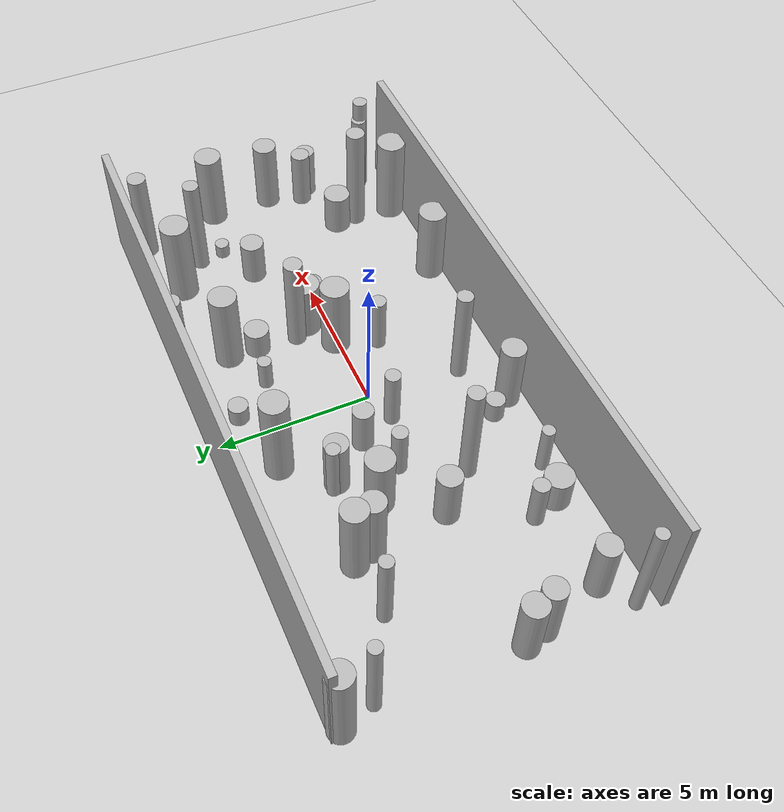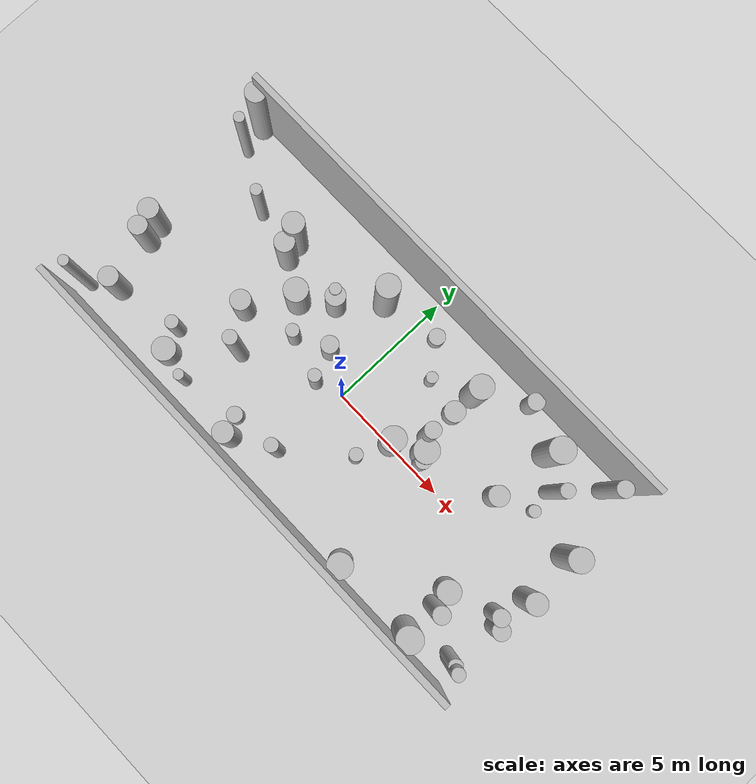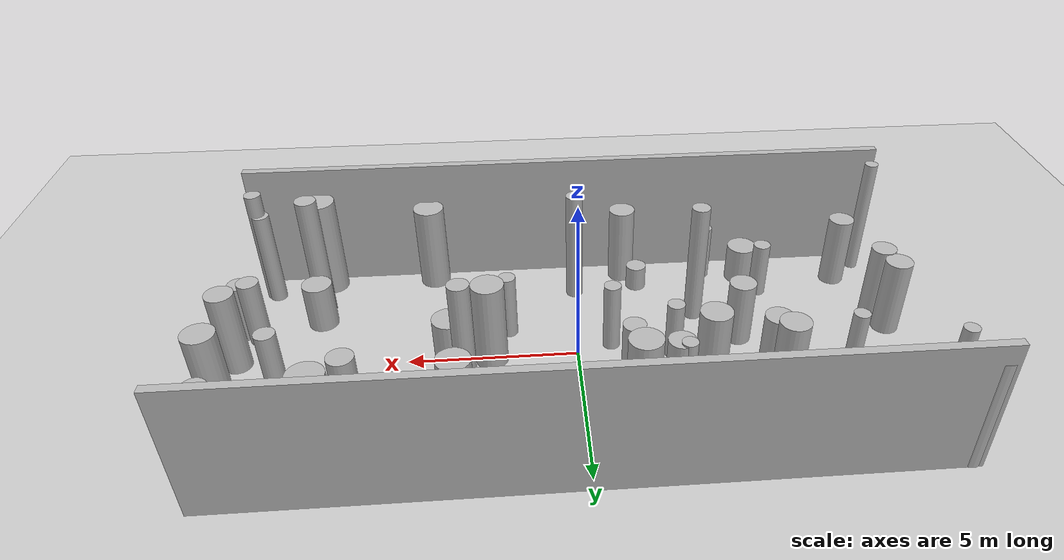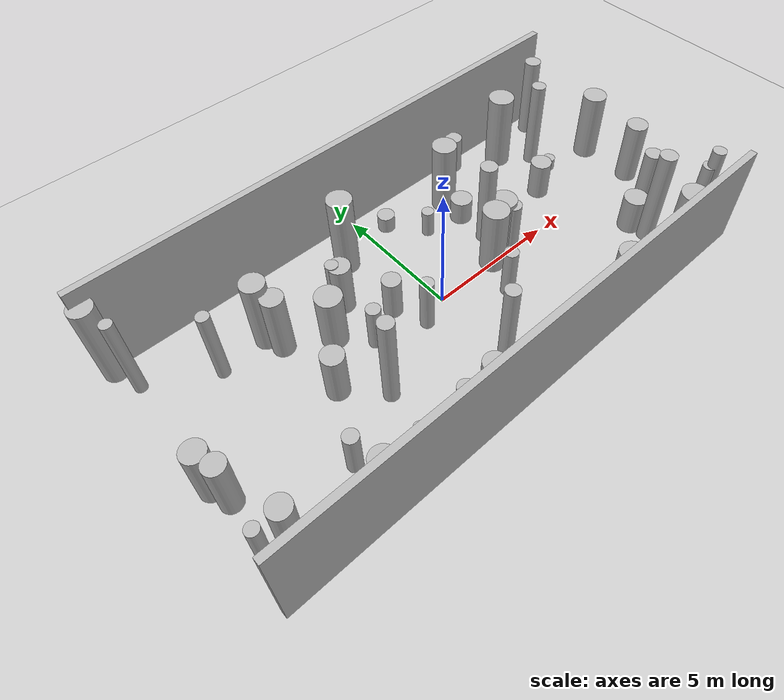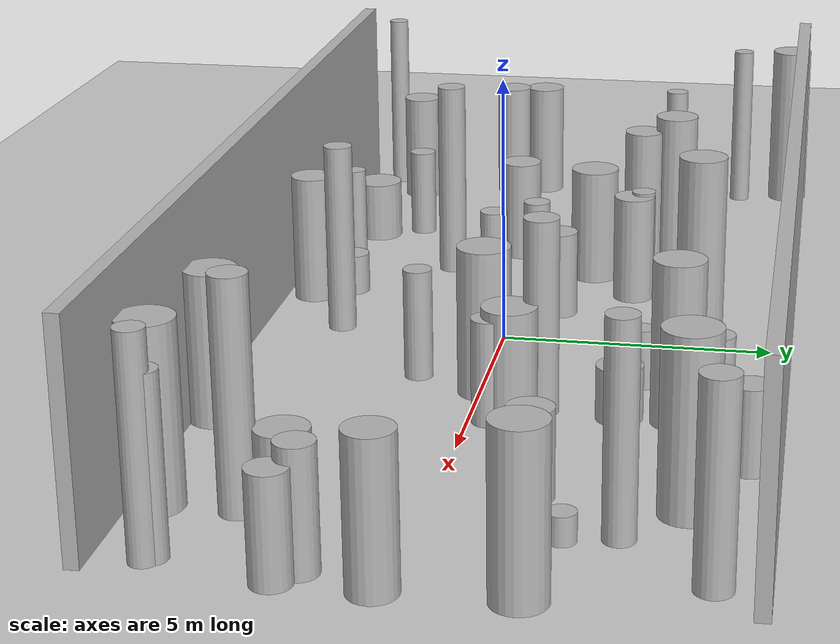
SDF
<?xml version="1.0"?>
<sdf version="1.4">
  <world name="default">
    <gui>
      <camera name="user_camera">
        <pose>-20 -30 40 0 0.66 0.83</pose>
      </camera>
    </gui>
    <include>
      <uri>model://ground_plane</uri>
    </include>
    <include>
      <uri>model://sun</uri>
    </include>
    <scene>
      <shadows>0</shadows>
    </scene>
    <model name="forest">
      <static>true</static>
      <link name="cylinder0">
        <pose>-1.0301177082719377 -0.35983007779228604 1.0854777813923082 0 0 0 </pose>
        <visual name="visual">
          <geometry>
            <cylinder>
              <radius>0.25306139632455926</radius>
              <length>2.1709555627846164</length>
            </cylinder>
          </geometry>
        </visual>
        <collision name="collision">
          <geometry>
            <cylinder>
              <radius>0.25306139632455926</radius>
              <length>2.1709555627846164</length>
            </cylinder>
          </geometry>
          <max_contacts>0</max_contacts>
        </collision>
      </link>
      <link name="cylinder1">
        <pose>-1.4057930810582207 3.5692456613395436 1.6581017096428807 0 0 0 </pose>
        <visual name="visual">
          <geometry>
            <cylinder>
              <radius>0.4557007820598614</radius>
              <length>3.3162034192857615</length>
            </cylinder>
          </geometry>
        </visual>
        <collision name="collision">
          <geometry>
            <cylinder>
              <radius>0.4557007820598614</radius>
              <length>3.3162034192857615</length>
            </cylinder>
          </geometry>
          <max_contacts>0</max_contacts>
        </collision>
      </link>
      <link name="cylinder2">
        <pose>9.45469379322288 -3.700964951062209 1.5098501211940758 0 0 0 </pose>
        <visual name="visual">
          <geometry>
            <cylinder>
              <radius>0.25859602107051727</radius>
              <length>3.0197002423881516</length>
            </cylinder>
          </geometry>
        </visual>
        <collision name="collision">
          <geometry>
            <cylinder>
              <radius>0.25859602107051727</radius>
              <length>3.0197002423881516</length>
            </cylinder>
          </geometry>
          <max_contacts>0</max_contacts>
        </collision>
      </link>
      <link name="cylinder3">
        <pose>7.98379791241549 2.172332037739241 0.24824209040521372 0 0 0 </pose>
        <visual name="visual">
          <geometry>
            <cylinder>
              <radius>0.2395807017288249</radius>
              <length>0.49648418081042744</length>
            </cylinder>
          </geometry>
        </visual>
        <collision name="collision">
          <geometry>
            <cylinder>
              <radius>0.2395807017288249</radius>
              <length>0.49648418081042744</length>
            </cylinder>
          </geometry>
          <max_contacts>0</max_contacts>
        </collision>
      </link>
      <link name="cylinder4">
        <pose>-2.8183339231847127 0.20994360579979254 0.9102416969493585 0 0 0 </pose>
        <visual name="visual">
          <geometry>
            <cylinder>
              <radius>0.25798971732153614</radius>
              <length>1.820483393898717</length>
            </cylinder>
          </geometry>
        </visual>
        <collision name="collision">
          <geometry>
            <cylinder>
              <radius>0.25798971732153614</radius>
              <length>1.820483393898717</length>
            </cylinder>
          </geometry>
          <max_contacts>0</max_contacts>
        </collision>
      </link>
      <link name="cylinder5">
        <pose>4.41498378678345 -4.254336631859525 1.3691623202220524 0 0 0 </pose>
        <visual name="visual">
          <geometry>
            <cylinder>
              <radius>0.47167478547522673</radius>
              <length>2.738324640444105</length>
            </cylinder>
          </geometry>
        </visual>
        <collision name="collision">
          <geometry>
            <cylinder>
              <radius>0.47167478547522673</radius>
              <length>2.738324640444105</length>
            </cylinder>
          </geometry>
          <max_contacts>0</max_contacts>
        </collision>
      </link>
      <link name="cylinder6">
        <pose>-9.356803147631688 -1.2666465442239705 1.2141438456737954 0 0 0 </pose>
        <visual name="visual">
          <geometry>
            <cylinder>
              <radius>0.37046246489823964</radius>
              <length>2.428287691347591</length>
            </cylinder>
          </geometry>
        </visual>
        <collision name="collision">
          <geometry>
            <cylinder>
              <radius>0.37046246489823964</radius>
              <length>2.428287691347591</length>
            </cylinder>
          </geometry>
          <max_contacts>0</max_contacts>
        </collision>
      </link>
      <link name="cylinder7">
        <pose>6.584523013684574 1.4855843340299204 0.7706817661126549 0 0 0 </pose>
        <visual name="visual">
          <geometry>
            <cylinder>
              <radius>0.3960398615192342</radius>
              <length>1.5413635322253099</length>
            </cylinder>
          </geometry>
        </visual>
        <collision name="collision">
          <geometry>
            <cylinder>
              <radius>0.3960398615192342</radius>
              <length>1.5413635322253099</length>
            </cylinder>
          </geometry>
          <max_contacts>0</max_contacts>
        </collision>
      </link>
      <link name="cylinder8">
        <pose>-7.20698206606373 2.6252708814560037 1.5176462124301255 0 0 0 </pose>
        <visual name="visual">
          <geometry>
            <cylinder>
              <radius>0.22334997959686098</radius>
              <length>3.035292424860251</length>
            </cylinder>
          </geometry>
        </visual>
        <collision name="collision">
          <geometry>
            <cylinder>
              <radius>0.22334997959686098</radius>
              <length>3.035292424860251</length>
            </cylinder>
          </geometry>
          <max_contacts>0</max_contacts>
        </collision>
      </link>
      <link name="cylinder9">
        <pose>-9.450710835631062 3.9289946607988426 1.715501511258525 0 0 0 </pose>
        <visual name="visual">
          <geometry>
            <cylinder>
              <radius>0.21002016579064794</radius>
              <length>3.43100302251705</length>
            </cylinder>
          </geometry>
        </visual>
        <collision name="collision">
          <geometry>
            <cylinder>
              <radius>0.21002016579064794</radius>
              <length>3.43100302251705</length>
            </cylinder>
          </geometry>
          <max_contacts>0</max_contacts>
        </collision>
      </link>
      <link name="cylinder10">
        <pose>-2.808255917658835 2.3370781648043337 1.0693602171880967 0 0 0 </pose>
        <visual name="visual">
          <geometry>
            <cylinder>
              <radius>0.23156748395044202</radius>
              <length>2.1387204343761934</length>
            </cylinder>
          </geometry>
        </visual>
        <collision name="collision">
          <geometry>
            <cylinder>
              <radius>0.23156748395044202</radius>
              <length>2.1387204343761934</length>
            </cylinder>
          </geometry>
          <max_contacts>0</max_contacts>
        </collision>
      </link>
      <link name="cylinder11">
        <pose>-2.6306390841247644 2.1709371766049648 1.0442551333129146 0 0 0 </pose>
        <visual name="visual">
          <geometry>
            <cylinder>
              <radius>0.3920221159887988</radius>
              <length>2.0885102666258293</length>
            </cylinder>
          </geometry>
        </visual>
        <collision name="collision">
          <geometry>
            <cylinder>
              <radius>0.3920221159887988</radius>
              <length>2.0885102666258293</length>
            </cylinder>
          </geometry>
          <max_contacts>0</max_contacts>
        </collision>
      </link>
      <link name="cylinder12">
        <pose>5.105690594820015 4.835596534734176 0.7611342861935041 0 0 0 </pose>
        <visual name="visual">
          <geometry>
            <cylinder>
              <radius>0.33055577144128057</radius>
              <length>1.5222685723870082</length>
            </cylinder>
          </geometry>
        </visual>
        <collision name="collision">
          <geometry>
            <cylinder>
              <radius>0.33055577144128057</radius>
              <length>1.5222685723870082</length>
            </cylinder>
          </geometry>
          <max_contacts>0</max_contacts>
        </collision>
      </link>
      <link name="cylinder13">
        <pose>2.5545583391392235 0.06921111825929316 1.3560166258051618 0 0 0 </pose>
        <visual name="visual">
          <geometry>
            <cylinder>
              <radius>0.4774235928512021</radius>
              <length>2.7120332516103236</length>
            </cylinder>
          </geometry>
        </visual>
        <collision name="collision">
          <geometry>
            <cylinder>
              <radius>0.4774235928512021</radius>
              <length>2.7120332516103236</length>
            </cylinder>
          </geometry>
          <max_contacts>0</max_contacts>
        </collision>
      </link>
      <link name="cylinder14">
        <pose>-5.41961300604849 2.7653528784595194 1.4892827207567176 0 0 0 </pose>
        <visual name="visual">
          <geometry>
            <cylinder>
              <radius>0.4261585292087446</radius>
              <length>2.9785654415134353</length>
            </cylinder>
          </geometry>
        </visual>
        <collision name="collision">
          <geometry>
            <cylinder>
              <radius>0.4261585292087446</radius>
              <length>2.9785654415134353</length>
            </cylinder>
          </geometry>
          <max_contacts>0</max_contacts>
        </collision>
      </link>
      <link name="cylinder15">
        <pose>3.645912225240197 0.6861011706055109 1.025085191809132 0 0 0 </pose>
        <visual name="visual">
          <geometry>
            <cylinder>
              <radius>0.4849605764676407</radius>
              <length>2.050170383618264</length>
            </cylinder>
          </geometry>
        </visual>
        <collision name="collision">
          <geometry>
            <cylinder>
              <radius>0.4849605764676407</radius>
              <length>2.050170383618264</length>
            </cylinder>
          </geometry>
          <max_contacts>0</max_contacts>
        </collision>
      </link>
      <link name="cylinder16">
        <pose>6.8112615467732205 3.97600326297027 1.5469773722376452 0 0 0 </pose>
        <visual name="visual">
          <geometry>
            <cylinder>
              <radius>0.4889455749192782</radius>
              <length>3.0939547444752904</length>
            </cylinder>
          </geometry>
        </visual>
        <collision name="collision">
          <geometry>
            <cylinder>
              <radius>0.4889455749192782</radius>
              <length>3.0939547444752904</length>
            </cylinder>
          </geometry>
          <max_contacts>0</max_contacts>
        </collision>
      </link>
      <link name="cylinder17">
        <pose>-6.06583451708447 -2.751946404324869 0.8910299115256004 0 0 0 </pose>
        <visual name="visual">
          <geometry>
            <cylinder>
              <radius>0.262986723006799</radius>
              <length>1.7820598230512008</length>
            </cylinder>
          </geometry>
        </visual>
        <collision name="collision">
          <geometry>
            <cylinder>
              <radius>0.262986723006799</radius>
              <length>1.7820598230512008</length>
            </cylinder>
          </geometry>
          <max_contacts>0</max_contacts>
        </collision>
      </link>
      <link name="cylinder18">
        <pose>9.932474322972098 -1.771116225794882 0.9198522296893321 0 0 0 </pose>
        <visual name="visual">
          <geometry>
            <cylinder>
              <radius>0.3383912498797816</radius>
              <length>1.8397044593786642</length>
            </cylinder>
          </geometry>
        </visual>
        <collision name="collision">
          <geometry>
            <cylinder>
              <radius>0.3383912498797816</radius>
              <length>1.8397044593786642</length>
            </cylinder>
          </geometry>
          <max_contacts>0</max_contacts>
        </collision>
      </link>
      <link name="cylinder19">
        <pose>-9.739532376414626 4.993554119943317 1.7069043245133328 0 0 0 </pose>
        <visual name="visual">
          <geometry>
            <cylinder>
              <radius>0.41273974158868937</radius>
              <length>3.4138086490266657</length>
            </cylinder>
          </geometry>
        </visual>
        <collision name="collision">
          <geometry>
            <cylinder>
              <radius>0.41273974158868937</radius>
              <length>3.4138086490266657</length>
            </cylinder>
          </geometry>
          <max_contacts>0</max_contacts>
        </collision>
      </link>
      <link name="cylinder20">
        <pose>-4.889650928662763 -0.41244816308899246 1.0064940266855156 0 0 0 </pose>
        <visual name="visual">
          <geometry>
            <cylinder>
              <radius>0.39794867056142336</radius>
              <length>2.012988053371031</length>
            </cylinder>
          </geometry>
        </visual>
        <collision name="collision">
          <geometry>
            <cylinder>
              <radius>0.39794867056142336</radius>
              <length>2.012988053371031</length>
            </cylinder>
          </geometry>
          <max_contacts>0</max_contacts>
        </collision>
      </link>
      <link name="cylinder21">
        <pose>-8.727722670795103 -3.2923282695976672 1.1363986280212557 0 0 0 </pose>
        <visual name="visual">
          <geometry>
            <cylinder>
              <radius>0.38655742192874687</radius>
              <length>2.2727972560425114</length>
            </cylinder>
          </geometry>
        </visual>
        <collision name="collision">
          <geometry>
            <cylinder>
              <radius>0.38655742192874687</radius>
              <length>2.2727972560425114</length>
            </cylinder>
          </geometry>
          <max_contacts>0</max_contacts>
        </collision>
      </link>
      <link name="cylinder22">
        <pose>9.91535111218106 1.8278236889752044 1.4117125554089376 0 0 0 </pose>
        <visual name="visual">
          <geometry>
            <cylinder>
              <radius>0.4548998262114673</radius>
              <length>2.823425110817875</length>
            </cylinder>
          </geometry>
        </visual>
        <collision name="collision">
          <geometry>
            <cylinder>
              <radius>0.4548998262114673</radius>
              <length>2.823425110817875</length>
            </cylinder>
          </geometry>
          <max_contacts>0</max_contacts>
        </collision>
      </link>
      <link name="cylinder23">
        <pose>-2.1583639786612157 -3.397853003846522 0.3925081955597124 0 0 0 </pose>
        <visual name="visual">
          <geometry>
            <cylinder>
              <radius>0.315291579282266</radius>
              <length>0.7850163911194248</length>
            </cylinder>
          </geometry>
        </visual>
        <collision name="collision">
          <geometry>
            <cylinder>
              <radius>0.315291579282266</radius>
              <length>0.7850163911194248</length>
            </cylinder>
          </geometry>
          <max_contacts>0</max_contacts>
        </collision>
      </link>
      <link name="cylinder24">
        <pose>3.26316294013173 1.17591690210595 1.7584346925165029 0 0 0 </pose>
        <visual name="visual">
          <geometry>
            <cylinder>
              <radius>0.30866158302238134</radius>
              <length>3.5168693850330057</length>
            </cylinder>
          </geometry>
        </visual>
        <collision name="collision">
          <geometry>
            <cylinder>
              <radius>0.30866158302238134</radius>
              <length>3.5168693850330057</length>
            </cylinder>
          </geometry>
          <max_contacts>0</max_contacts>
        </collision>
      </link>
      <link name="cylinder25">
        <pose>-4.463253952501935 -3.8629159519933163 0.9005606489993493 0 0 0 </pose>
        <visual name="visual">
          <geometry>
            <cylinder>
              <radius>0.20627816904419793</radius>
              <length>1.8011212979986986</length>
            </cylinder>
          </geometry>
        </visual>
        <collision name="collision">
          <geometry>
            <cylinder>
              <radius>0.20627816904419793</radius>
              <length>1.8011212979986986</length>
            </cylinder>
          </geometry>
          <max_contacts>0</max_contacts>
        </collision>
      </link>
      <link name="cylinder26">
        <pose>7.800215817349962 -2.8778765753006463 1.9674121526582145 0 0 0 </pose>
        <visual name="visual">
          <geometry>
            <cylinder>
              <radius>0.3147102186866023</radius>
              <length>3.934824305316429</length>
            </cylinder>
          </geometry>
        </visual>
        <collision name="collision">
          <geometry>
            <cylinder>
              <radius>0.3147102186866023</radius>
              <length>3.934824305316429</length>
            </cylinder>
          </geometry>
          <max_contacts>0</max_contacts>
        </collision>
      </link>
      <link name="cylinder27">
        <pose>-9.652966927956484 -4.004353160728812 1.9102899290482631 0 0 0 </pose>
        <visual name="visual">
          <geometry>
            <cylinder>
              <radius>0.203503052578854</radius>
              <length>3.8205798580965262</length>
            </cylinder>
          </geometry>
        </visual>
        <collision name="collision">
          <geometry>
            <cylinder>
              <radius>0.203503052578854</radius>
              <length>3.8205798580965262</length>
            </cylinder>
          </geometry>
          <max_contacts>0</max_contacts>
        </collision>
      </link>
      <link name="cylinder28">
        <pose>7.82590391966426 3.0223199536546215 1.8155159349111107 0 0 0 </pose>
        <visual name="visual">
          <geometry>
            <cylinder>
              <radius>0.26985829431617103</radius>
              <length>3.6310318698222215</length>
            </cylinder>
          </geometry>
        </visual>
        <collision name="collision">
          <geometry>
            <cylinder>
              <radius>0.26985829431617103</radius>
              <length>3.6310318698222215</length>
            </cylinder>
          </geometry>
          <max_contacts>0</max_contacts>
        </collision>
      </link>
      <link name="cylinder29">
        <pose>-1.5344373689780824 0.8462422504337583 0.8301172715170129 0 0 0 </pose>
        <visual name="visual">
          <geometry>
            <cylinder>
              <radius>0.34185433960869493</radius>
              <length>1.6602345430340257</length>
            </cylinder>
          </geometry>
        </visual>
        <collision name="collision">
          <geometry>
            <cylinder>
              <radius>0.34185433960869493</radius>
              <length>1.6602345430340257</length>
            </cylinder>
          </geometry>
          <max_contacts>0</max_contacts>
        </collision>
      </link>
      <link name="cylinder30">
        <pose>-1.7294340838899007 -4.079018096959379 1.2462282409171244 0 0 0 </pose>
        <visual name="visual">
          <geometry>
            <cylinder>
              <radius>0.40353290600841374</radius>
              <length>2.4924564818342487</length>
            </cylinder>
          </geometry>
        </visual>
        <collision name="collision">
          <geometry>
            <cylinder>
              <radius>0.40353290600841374</radius>
              <length>2.4924564818342487</length>
            </cylinder>
          </geometry>
          <max_contacts>0</max_contacts>
        </collision>
      </link>
      <link name="cylinder31">
        <pose>-3.7344309758835976 1.2617561798987396 1.141562761419605 0 0 0 </pose>
        <visual name="visual">
          <geometry>
            <cylinder>
              <radius>0.4681156015088108</radius>
              <length>2.28312552283921</length>
            </cylinder>
          </geometry>
        </visual>
        <collision name="collision">
          <geometry>
            <cylinder>
              <radius>0.4681156015088108</radius>
              <length>2.28312552283921</length>
            </cylinder>
          </geometry>
          <max_contacts>0</max_contacts>
        </collision>
      </link>
      <link name="cylinder32">
        <pose>-9.570006772161035 -0.5692363392900877 1.2023051602685055 0 0 0 </pose>
        <visual name="visual">
          <geometry>
            <cylinder>
              <radius>0.4024257171419755</radius>
              <length>2.404610320537011</length>
            </cylinder>
          </geometry>
        </visual>
        <collision name="collision">
          <geometry>
            <cylinder>
              <radius>0.4024257171419755</radius>
              <length>2.404610320537011</length>
            </cylinder>
          </geometry>
          <max_contacts>0</max_contacts>
        </collision>
      </link>
      <link name="cylinder33">
        <pose>9.567919760362113 -3.7978478104303717 1.8476623906600889 0 0 0 </pose>
        <visual name="visual">
          <geometry>
            <cylinder>
              <radius>0.246045659449094</radius>
              <length>3.6953247813201777</length>
            </cylinder>
          </geometry>
        </visual>
        <collision name="collision">
          <geometry>
            <cylinder>
              <radius>0.246045659449094</radius>
              <length>3.6953247813201777</length>
            </cylinder>
          </geometry>
          <max_contacts>0</max_contacts>
        </collision>
      </link>
      <link name="cylinder34">
        <pose>-5.206837335818239 2.1096294966196023 1.3439065616392325 0 0 0 </pose>
        <visual name="visual">
          <geometry>
            <cylinder>
              <radius>0.39163877676072384</radius>
              <length>2.687813123278465</length>
            </cylinder>
          </geometry>
        </visual>
        <collision name="collision">
          <geometry>
            <cylinder>
              <radius>0.39163877676072384</radius>
              <length>2.687813123278465</length>
            </cylinder>
          </geometry>
          <max_contacts>0</max_contacts>
        </collision>
      </link>
      <link name="cylinder35">
        <pose>9.968249902629026 -0.2731007413417803 1.283243092689351 0 0 0 </pose>
        <visual name="visual">
          <geometry>
            <cylinder>
              <radius>0.40769575714067907</radius>
              <length>2.566486185378702</length>
            </cylinder>
          </geometry>
        </visual>
        <collision name="collision">
          <geometry>
            <cylinder>
              <radius>0.40769575714067907</radius>
              <length>2.566486185378702</length>
            </cylinder>
          </geometry>
          <max_contacts>0</max_contacts>
        </collision>
      </link>
      <link name="cylinder36">
        <pose>0.8764862299245841 4.0616958983790425 0.3311875797528571 0 0 0 </pose>
        <visual name="visual">
          <geometry>
            <cylinder>
              <radius>0.32599446944310834</radius>
              <length>0.6623751595057142</length>
            </cylinder>
          </geometry>
        </visual>
        <collision name="collision">
          <geometry>
            <cylinder>
              <radius>0.32599446944310834</radius>
              <length>0.6623751595057142</length>
            </cylinder>
          </geometry>
          <max_contacts>0</max_contacts>
        </collision>
      </link>
      <link name="cylinder37">
        <pose>-3.744541583404817 -1.6703859521818143 1.9302957876654387 0 0 0 </pose>
        <visual name="visual">
          <geometry>
            <cylinder>
              <radius>0.2744688856006209</radius>
              <length>3.8605915753308775</length>
            </cylinder>
          </geometry>
        </visual>
        <collision name="collision">
          <geometry>
            <cylinder>
              <radius>0.2744688856006209</radius>
              <length>3.8605915753308775</length>
            </cylinder>
          </geometry>
          <max_contacts>0</max_contacts>
        </collision>
      </link>
      <link name="cylinder38">
        <pose>-0.1282949070652286 -3.1427050074019256 1.7983210366774856 0 0 0 </pose>
        <visual name="visual">
          <geometry>
            <cylinder>
              <radius>0.26150190584507244</radius>
              <length>3.596642073354971</length>
            </cylinder>
          </geometry>
        </visual>
        <collision name="collision">
          <geometry>
            <cylinder>
              <radius>0.26150190584507244</radius>
              <length>3.596642073354971</length>
            </cylinder>
          </geometry>
          <max_contacts>0</max_contacts>
        </collision>
      </link>
      <link name="cylinder39">
        <pose>1.863863044620512 2.7912235600545277 0.5501927141642496 0 0 0 </pose>
        <visual name="visual">
          <geometry>
            <cylinder>
              <radius>0.22808955955886726</radius>
              <length>1.1003854283284993</length>
            </cylinder>
          </geometry>
        </visual>
        <collision name="collision">
          <geometry>
            <cylinder>
              <radius>0.22808955955886726</radius>
              <length>1.1003854283284993</length>
            </cylinder>
          </geometry>
          <max_contacts>0</max_contacts>
        </collision>
      </link>
      <link name="cylinder40">
        <pose>-5.674263728533882 -3.6391528305188467 0.6037984502127571 0 0 0 </pose>
        <visual name="visual">
          <geometry>
            <cylinder>
              <radius>0.4669074032250789</radius>
              <length>1.2075969004255143</length>
            </cylinder>
          </geometry>
        </visual>
        <collision name="collision">
          <geometry>
            <cylinder>
              <radius>0.4669074032250789</radius>
              <length>1.2075969004255143</length>
            </cylinder>
          </geometry>
          <max_contacts>0</max_contacts>
        </collision>
      </link>
      <link name="cylinder41">
        <pose>3.342499466368844 2.5369544848610577 0.4905101318356744 0 0 0 </pose>
        <visual name="visual">
          <geometry>
            <cylinder>
              <radius>0.4118993545556746</radius>
              <length>0.9810202636713488</length>
            </cylinder>
          </geometry>
        </visual>
        <collision name="collision">
          <geometry>
            <cylinder>
              <radius>0.4118993545556746</radius>
              <length>0.9810202636713488</length>
            </cylinder>
          </geometry>
          <max_contacts>0</max_contacts>
        </collision>
      </link>
      <link name="cylinder42">
        <pose>3.351398196229841 3.5176507297107733 1.4702564384604997 0 0 0 </pose>
        <visual name="visual">
          <geometry>
            <cylinder>
              <radius>0.45897022425446177</radius>
              <length>2.9405128769209994</length>
            </cylinder>
          </geometry>
        </visual>
        <collision name="collision">
          <geometry>
            <cylinder>
              <radius>0.45897022425446177</radius>
              <length>2.9405128769209994</length>
            </cylinder>
          </geometry>
          <max_contacts>0</max_contacts>
        </collision>
      </link>
      <link name="cylinder43">
        <pose>7.778784119353933 -2.1469822807413563 0.7365238417900443 0 0 0 </pose>
        <visual name="visual">
          <geometry>
            <cylinder>
              <radius>0.4517025851687485</radius>
              <length>1.4730476835800885</length>
            </cylinder>
          </geometry>
        </visual>
        <collision name="collision">
          <geometry>
            <cylinder>
              <radius>0.4517025851687485</radius>
              <length>1.4730476835800885</length>
            </cylinder>
          </geometry>
          <max_contacts>0</max_contacts>
        </collision>
      </link>
      <link name="cylinder44">
        <pose>9.564059162319868 -1.4616111350520566 0.374220710678931 0 0 0 </pose>
        <visual name="visual">
          <geometry>
            <cylinder>
              <radius>0.2950351608995053</radius>
              <length>0.748441421357862</length>
            </cylinder>
          </geometry>
        </visual>
        <collision name="collision">
          <geometry>
            <cylinder>
              <radius>0.2950351608995053</radius>
              <length>0.748441421357862</length>
            </cylinder>
          </geometry>
          <max_contacts>0</max_contacts>
        </collision>
      </link>
      <link name="cylinder45">
        <pose>9.552395922714808 -1.458094774882638 1.0523665618870381 0 0 0 </pose>
        <visual name="visual">
          <geometry>
            <cylinder>
              <radius>0.32475346987689907</radius>
              <length>2.1047331237740763</length>
            </cylinder>
          </geometry>
        </visual>
        <collision name="collision">
          <geometry>
            <cylinder>
              <radius>0.32475346987689907</radius>
              <length>2.1047331237740763</length>
            </cylinder>
          </geometry>
          <max_contacts>0</max_contacts>
        </collision>
      </link>
      <link name="cylinder46">
        <pose>2.024071351524876 -1.2189929885394868 1.0180963243377759 0 0 0 </pose>
        <visual name="visual">
          <geometry>
            <cylinder>
              <radius>0.2583624826638884</radius>
              <length>2.0361926486755517</length>
            </cylinder>
          </geometry>
        </visual>
        <collision name="collision">
          <geometry>
            <cylinder>
              <radius>0.2583624826638884</radius>
              <length>2.0361926486755517</length>
            </cylinder>
          </geometry>
          <max_contacts>0</max_contacts>
        </collision>
      </link>
      <link name="cylinder47">
        <pose>3.8256986440107 0.3546914741936664 0.9430996562428018 0 0 0 </pose>
        <visual name="visual">
          <geometry>
            <cylinder>
              <radius>0.297760349351013</radius>
              <length>1.8861993124856036</length>
            </cylinder>
          </geometry>
        </visual>
        <collision name="collision">
          <geometry>
            <cylinder>
              <radius>0.297760349351013</radius>
              <length>1.8861993124856036</length>
            </cylinder>
          </geometry>
          <max_contacts>0</max_contacts>
        </collision>
      </link>
      <link name="cylinder48">
        <pose>7.7683460666036055 -4.215987247734951 1.5715117313654332 0 0 0 </pose>
        <visual name="visual">
          <geometry>
            <cylinder>
              <radius>0.4876307480710518</radius>
              <length>3.1430234627308664</length>
            </cylinder>
          </geometry>
        </visual>
        <collision name="collision">
          <geometry>
            <cylinder>
              <radius>0.4876307480710518</radius>
              <length>3.1430234627308664</length>
            </cylinder>
          </geometry>
          <max_contacts>0</max_contacts>
        </collision>
      </link>
      <link name="cylinder49">
        <pose>9.166315454604756 4.52079628115491 1.6828282625887339 0 0 0 </pose>
        <visual name="visual">
          <geometry>
            <cylinder>
              <radius>0.3113416333864423</radius>
              <length>3.3656565251774677</length>
            </cylinder>
          </geometry>
        </visual>
        <collision name="collision">
          <geometry>
            <cylinder>
              <radius>0.3113416333864423</radius>
              <length>3.3656565251774677</length>
            </cylinder>
          </geometry>
          <max_contacts>0</max_contacts>
        </collision>
      </link>
      <link name="cube0">
        <pose>0 5.25 2.0 0 0 0 </pose>
        <visual name="visual">
          <geometry>
            <box>
              <size>20 0.25 4.0</size>
            </box>
          </geometry>
        </visual>
        <collision name="collision">
          <geometry>
            <box>
              <size>20 0.25 4.0</size>
            </box>
          </geometry>
          <max_contacts>0</max_contacts>
        </collision>
      </link>
      <link name="cube1">
        <pose>0 -4.75 2.0 0 0 0 </pose>
        <visual name="visual">
          <geometry>
            <box>
              <size>20 0.25 4.0</size>
            </box>
          </geometry>
        </visual>
        <collision name="collision">
          <geometry>
            <box>
              <size>20 0.25 4.0</size>
            </box>
          </geometry>
          <max_contacts>0</max_contacts>
        </collision>
      </link>
    </model>
    <!-- Plugins -->
    <plugin name="gazebo_octomap" filename="librotors_gazebo_octomap_plugin.so"/>
    <plugin name="ros_interface_plugin" filename="librotors_gazebo_ros_interface_plugin.so"/>
    <!-- Physics -->
    <physics name="default_physics" default="0" type="ode">
      <max_step_size>0.004</max_step_size>
      <real_time_factor>1</real_time_factor>
      <real_time_update_rate>250</real_time_update_rate>
      <gravity>0 0 -9.8</gravity>
      <magnetic_field>6e-06 2.3e-05 -4.2e-05</magnetic_field>
      <ode>
        <solver>
          <type>quick</type>
          <iters>1000</iters>
          <sor>1.3</sor>
          <use_dynamic_moi_rescaling>0</use_dynamic_moi_rescaling>
        </solver>
        <constraints>
          <cfm>0</cfm>
          <erp>0.2</erp>
          <contact_max_correcting_vel>100</contact_max_correcting_vel>
          <contact_surface_layer>0.001</contact_surface_layer>
        </constraints>
      </ode>
    </physics>
  </world>
</sdf>
